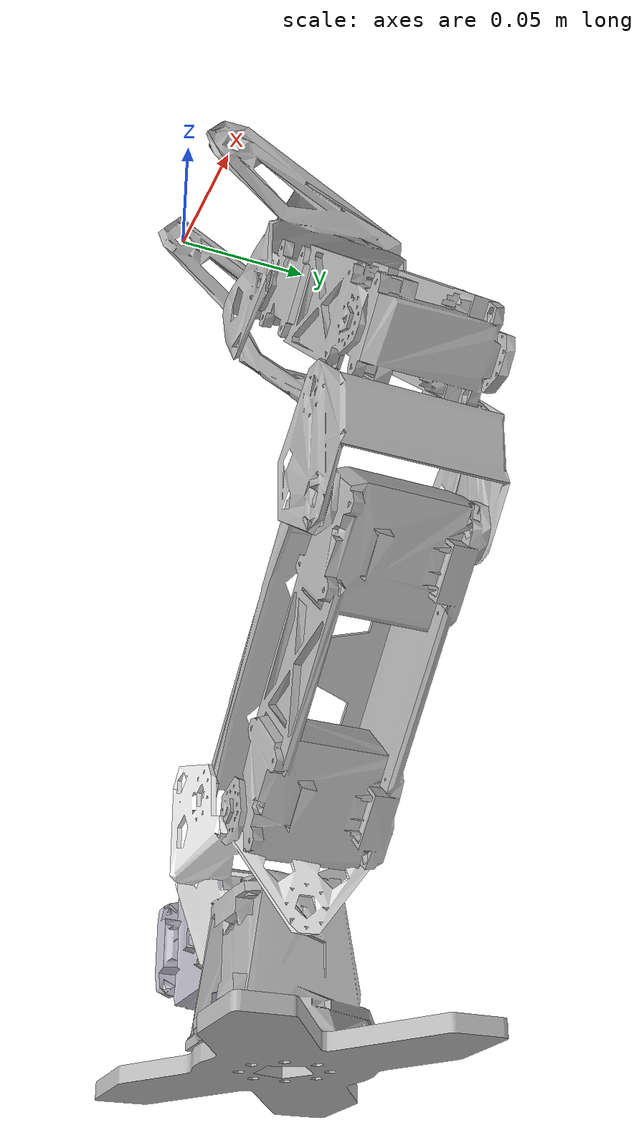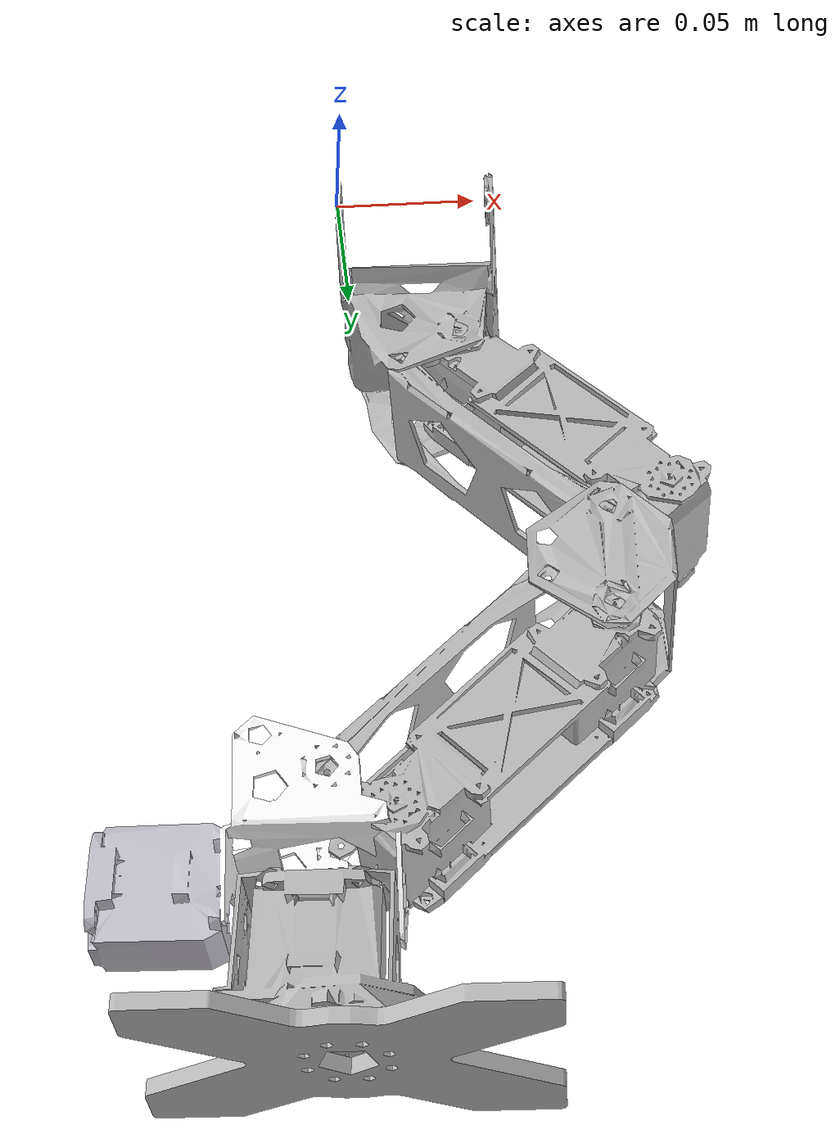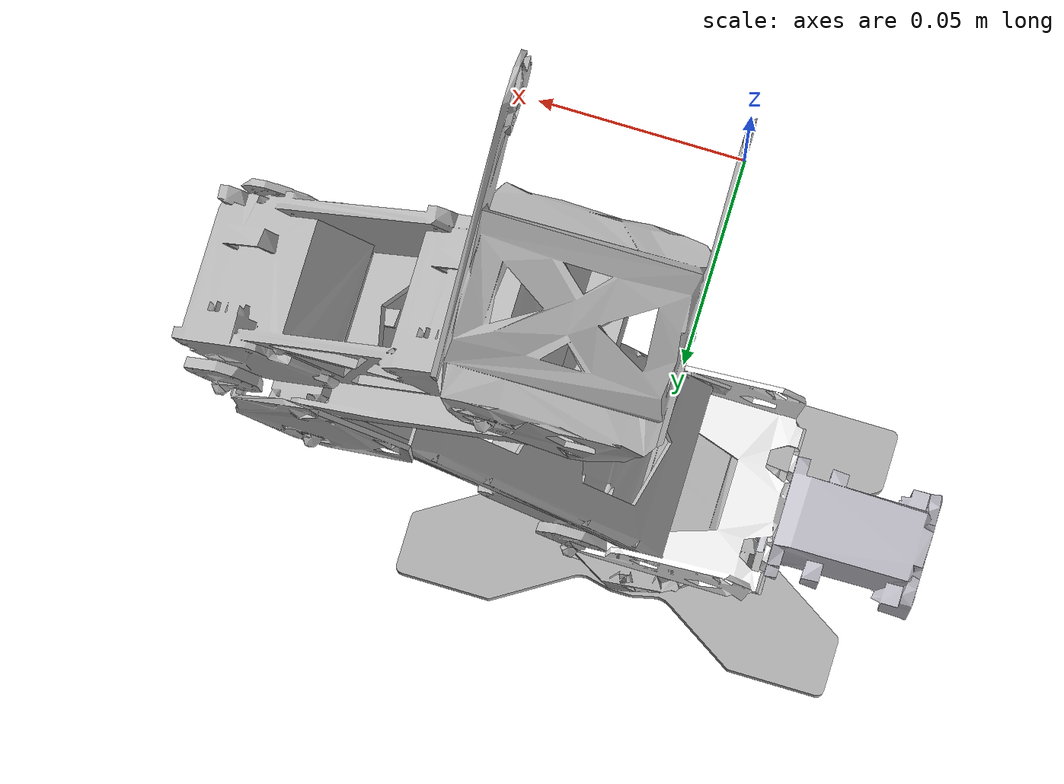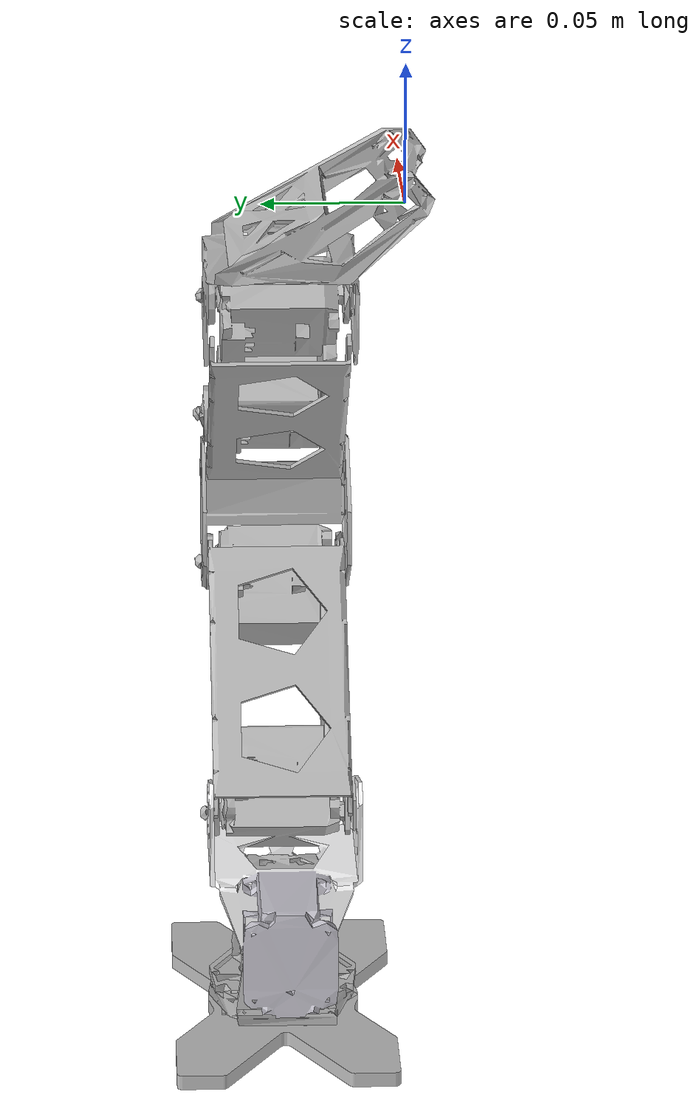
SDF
<sdf version='1.6'>
  <model name='ginko'>
    <link name='leg_l_link0'>
      <pose frame=''>0 0 0 0 -0 0</pose>
      <inertial>
        <pose frame=''>0.029308 0.037238 -0.026054 0 -0 0</pose>
        <mass>0.0343335</mass>
        <inertia>
          <ixx>2.443e-05</ixx>
          <ixy>-2.1e-07</ixy>
          <ixz>-2.1e-07</ixz>
          <iyy>2.287e-05</iyy>
          <iyz>-3.91e-06</iyz>
          <izz>2.983e-05</izz>
        </inertia>
      </inertial>
      <collision name='leg_l_link0_collision'>
        <pose frame=''>0 0 0 0 -0 0</pose>
        <geometry>
          <mesh>
            <scale>1 1 1</scale>
            <uri>model://ginko_description/models/ginko_auto/meshes/stl/link02_l_femoral.stl</uri>
          </mesh>
        </geometry>
      </collision>
      <visual name='leg_l_link0_visual'>
        <pose frame=''>0 0 0 0 -0 0</pose>
        <geometry>
          <mesh>
            <scale>1 1 1</scale>
            <uri>model://ginko_description/models/ginko_auto/meshes/stl/link02_l_femoral.stl</uri>
          </mesh>
        </geometry>
      </visual>
    </link>
    <link name='leg_l_link1'>
      <pose frame=''>0.0433 0.0175 -0.0481 0 0.7854 0</pose>
      <inertial>
        <pose frame=''>0.05 0.032851 0.000681 0 -0 0</pose>
        <mass>0.185257</mass>
        <inertia>
          <ixx>0.00041331</ixx>
          <ixy>-3.605e-05</ixy>
          <ixz>-0</ixz>
          <iyy>0.00027917</iyy>
          <iyz>-1.84e-06</iyz>
          <izz>0.0006651</izz>
        </inertia>
      </inertial>
      <collision name='leg_l_link1_collision'>
        <pose frame=''>0 0 0 0 -0 0</pose>
        <geometry>
          <mesh>
            <scale>1 1 1</scale>
            <uri>model://ginko_description/models/ginko_auto/meshes/stl/link03_l_leg01.stl</uri>
          </mesh>
        </geometry>
      </collision>
      <visual name='leg_l_link1_visual'>
        <pose frame=''>0 0 0 0 -0 0</pose>
        <geometry>
          <mesh>
            <scale>1 1 1</scale>
            <uri>model://ginko_description/models/ginko_auto/meshes/stl/link03_l_leg01.stl</uri>
          </mesh>
        </geometry>
      </visual>
    </link>
    <joint name='leg_l_joint1' type='revolute'>
      <child>leg_l_link1</child>
      <parent>leg_l_link0</parent>
      <axis>
        <xyz>0 -1 0</xyz>
        <limit>
          <lower>-1.3</lower>
          <upper>0.7854</upper>
          <effort>1000</effort>
          <velocity>0.5</velocity>
        </limit>
        <dynamics>
          <spring_reference>0</spring_reference>
          <spring_stiffness>0</spring_stiffness>
        </dynamics>
        <use_parent_model_frame>1</use_parent_model_frame>
      </axis>
    </joint>
    <link name='leg_l_link2'>
      <pose frame=''>0.022 0.0175 -0.06015 0 0.7854 0</pose>
      <inertial>
        <pose frame=''>0.05 0.024951 -0.004912 0 -0 0</pose>
        <mass>0.0164664</mass>
        <inertia>
          <ixx>6.4e-06</ixx>
          <ixy>0</ixy>
          <ixz>0</ixz>
          <iyy>1.642e-05</iyy>
          <iyz>0</iyz>
          <izz>2.264e-05</izz>
        </inertia>
      </inertial>
      <collision name='leg_l_link2_collision'>
        <pose frame=''>0 0 0 0 -0 0</pose>
        <geometry>
          <mesh>
            <scale>1 1 1</scale>
            <uri>model://ginko_description/models/ginko_auto/meshes/stl/link04_l_leg02.stl</uri>
          </mesh>
        </geometry>
      </collision>
      <visual name='leg_l_link2_visual'>
        <pose frame=''>0 0 0 0 -0 0</pose>
        <geometry>
          <mesh>
            <scale>1 1 1</scale>
            <uri>model://ginko_description/models/ginko_auto/meshes/stl/link04_l_leg02.stl</uri>
          </mesh>
        </geometry>
      </visual>
    </link>
    <joint name='leg_l_joint2' type='revolute'>
      <child>leg_l_link2</child>
      <parent>leg_l_link0</parent>
      <axis>
        <xyz>0 -1 0</xyz>
        <limit>
          <lower>-3.14159</lower>
          <upper>3.14159</upper>
          <effort>1000</effort>
          <velocity>0.5</velocity>
        </limit>
        <dynamics>
          <spring_reference>0</spring_reference>
          <spring_stiffness>0</spring_stiffness>
        </dynamics>
        <use_parent_model_frame>1</use_parent_model_frame>
      </axis>
    </joint>
    <link name='leg_l_link3'>
      <pose frame=''>0.092711 0.0175 -0.130861 0 -0 0</pose>
      <inertial>
        <pose frame=''>0.003934 0.023642 -0.0193 0 -0 0</pose>
        <mass>0.0178118</mass>
        <inertia>
          <ixx>1.301e-05</ixx>
          <ixy>8e-08</ixy>
          <ixz>0</ixz>
          <iyy>7e-06</iyy>
          <iyz>0</iyz>
          <izz>1.388e-05</izz>
        </inertia>
      </inertial>
      <collision name='leg_l_link3_collision'>
        <pose frame=''>0 0 0 0 -0 0</pose>
        <geometry>
          <mesh>
            <scale>1 1 1</scale>
            <uri>model://ginko_description/models/ginko_auto/meshes/stl/link05_l_knee.stl</uri>
          </mesh>
        </geometry>
      </collision>
      <visual name='leg_l_link3_visual'>
        <pose frame=''>0 0 0 0 -0 0</pose>
        <geometry>
          <mesh>
            <scale>1 1 1</scale>
            <uri>model://ginko_description/models/ginko_auto/meshes/stl/link05_l_knee.stl</uri>
          </mesh>
        </geometry>
      </visual>
    </link>
    <joint name='leg_l_joint3_sub' type='revolute'>
      <child>leg_l_link3</child>
      <parent>leg_l_link2</parent>
      <axis>
        <xyz>0 1 0</xyz>
        <limit>
          <lower>-3.14159</lower>
          <upper>3.14159</upper>
          <effort>1000</effort>
          <velocity>0.5</velocity>
        </limit>
        <dynamics>
          <spring_reference>0</spring_reference>
          <spring_stiffness>0</spring_stiffness>
        </dynamics>
        <use_parent_model_frame>1</use_parent_model_frame>
      </axis>
    </joint>
    <link name='leg_l_link4'>
      <pose frame=''>0.092711 0.0175 -0.169461 3.14159 0.785393 3.14159</pose>
      <inertial>
        <pose frame=''>0.05 0.032851 0.000681 0 -0 0</pose>
        <mass>0.185257</mass>
        <inertia>
          <ixx>0.00041331</ixx>
          <ixy>-3.605e-05</ixy>
          <ixz>-0</ixz>
          <iyy>0.00027917</iyy>
          <iyz>-1.84e-06</iyz>
          <izz>0.0006651</izz>
        </inertia>
      </inertial>
      <collision name='leg_l_link4_collision'>
        <pose frame=''>0 0 0 0 -0 0</pose>
        <geometry>
          <mesh>
            <scale>1 1 1</scale>
            <uri>model://ginko_description/models/ginko_auto/meshes/stl/link03_l_leg01.stl</uri>
          </mesh>
        </geometry>
      </collision>
      <visual name='leg_l_link4_visual'>
        <pose frame=''>0 0 0 0 -0 0</pose>
        <geometry>
          <mesh>
            <scale>1 1 1</scale>
            <uri>model://ginko_description/models/ginko_auto/meshes/stl/link03_l_leg01.stl</uri>
          </mesh>
        </geometry>
      </visual>
    </link>
    <joint name='leg_l_joint4' type='revolute'>
      <child>leg_l_link4</child>
      <parent>leg_l_link3</parent>
      <axis>
        <xyz>0 -1 0</xyz>
        <limit>
          <lower>-0.7854</lower>
          <upper>1.3</upper>
          <effort>1000</effort>
          <velocity>0.5</velocity>
        </limit>
        <dynamics>
          <spring_reference>0</spring_reference>
          <spring_stiffness>0</spring_stiffness>
        </dynamics>
        <use_parent_model_frame>1</use_parent_model_frame>
      </axis>
    </joint>
    <link name='leg_l_link5'>
      <pose frame=''>0.071411 0.0175 -0.157411 3.14159 0.785393 3.14159</pose>
      <inertial>
        <pose frame=''>0.05 0.024951 -0.004912 0 -0 0</pose>
        <mass>0.0164664</mass>
        <inertia>
          <ixx>6.4e-06</ixx>
          <ixy>0</ixy>
          <ixz>0</ixz>
          <iyy>1.642e-05</iyy>
          <iyz>0</iyz>
          <izz>2.264e-05</izz>
        </inertia>
      </inertial>
      <collision name='leg_l_link5_collision'>
        <pose frame=''>0 0 0 0 -0 0</pose>
        <geometry>
          <mesh>
            <scale>1 1 1</scale>
            <uri>model://ginko_description/models/ginko_auto/meshes/stl/link04_l_leg02.stl</uri>
          </mesh>
        </geometry>
      </collision>
      <visual name='leg_l_link5_visual'>
        <pose frame=''>0 0 0 0 -0 0</pose>
        <geometry>
          <mesh>
            <scale>1 1 1</scale>
            <uri>model://ginko_description/models/ginko_auto/meshes/stl/link04_l_leg02.stl</uri>
          </mesh>
        </geometry>
      </visual>
    </link>
    <joint name='leg_l_joint5' type='revolute'>
      <child>leg_l_link5</child>
      <parent>leg_l_link3</parent>
      <axis>
        <xyz>0 -1 0</xyz>
        <limit>
          <lower>-3.14159</lower>
          <upper>3.14159</upper>
          <effort>1000</effort>
          <velocity>0.5</velocity>
        </limit>
        <dynamics>
          <spring_reference>0</spring_reference>
          <spring_stiffness>0</spring_stiffness>
        </dynamics>
        <use_parent_model_frame>1</use_parent_model_frame>
      </axis>
    </joint>
    <link name='leg_l_link6'>
      <pose frame=''>0.000699 0.0175 -0.228121 0 -0 0</pose>
      <inertial>
        <pose frame=''>-0.041661 0.024639 -0.025863 0 -0 0</pose>
        <mass>0.087992</mass>
        <inertia>
          <ixx>2.815e-05</ixx>
          <ixy>-4.1e-07</ixy>
          <ixz>9.8e-06</ixz>
          <iyy>6.846e-05</iyy>
          <iyz>-2.6e-07</iyz>
          <izz>6.529e-05</izz>
        </inertia>
      </inertial>
      <collision name='leg_l_link6_collision'>
        <pose frame=''>0 0 0 0 -0 0</pose>
        <geometry>
          <mesh>
            <scale>1 1 1</scale>
            <uri>model://ginko_description/models/ginko_auto/meshes/stl/link06_l_toe01.stl</uri>
          </mesh>
        </geometry>
      </collision>
      <visual name='leg_l_link6_visual'>
        <pose frame=''>0 0 0 0 -0 0</pose>
        <geometry>
          <mesh>
            <scale>1 1 1</scale>
            <uri>model://ginko_description/models/ginko_auto/meshes/stl/link06_l_toe01.stl</uri>
          </mesh>
        </geometry>
      </visual>
    </link>
    <joint name='leg_l_joint6_sub' type='revolute'>
      <child>leg_l_link6</child>
      <parent>leg_l_link5</parent>
      <axis>
        <xyz>0 1 0</xyz>
        <limit>
          <lower>-3.14159</lower>
          <upper>3.14159</upper>
          <effort>1000</effort>
          <velocity>0.5</velocity>
        </limit>
        <dynamics>
          <spring_reference>0</spring_reference>
          <spring_stiffness>0</spring_stiffness>
        </dynamics>
        <use_parent_model_frame>1</use_parent_model_frame>
      </axis>
    </joint>
    <link name='leg_l_link7'>
      <pose frame=''>-0.027301 0.04225 -0.267221 0 -0 0</pose>
      <inertial>
        <pose frame=''>0.026588 1e-06 -0.017825 0 -0 0</pose>
        <mass>0.1092</mass>
        <inertia>
          <ixx>3.853e-05</ixx>
          <ixy>0</ixy>
          <ixz>-4.79e-06</ixz>
          <iyy>5.192e-05</iyy>
          <iyz>0</iyz>
          <izz>3.521e-05</izz>
        </inertia>
      </inertial>
      <collision name='leg_l_link7_collision'>
        <pose frame=''>0 0 0 0 -0 0</pose>
        <geometry>
          <mesh>
            <scale>1 1 1</scale>
            <uri>model://ginko_description/models/ginko_auto/meshes/stl/link07_l_toe02.stl</uri>
          </mesh>
        </geometry>
      </collision>
      <visual name='leg_l_link7_visual'>
        <pose frame=''>0 0 0 0 -0 0</pose>
        <geometry>
          <mesh>
            <scale>1 1 1</scale>
            <uri>model://ginko_description/models/ginko_auto/meshes/stl/link07_l_toe02.stl</uri>
          </mesh>
        </geometry>
      </visual>
    </link>
    <joint name='leg_l_joint7' type='revolute'>
      <child>leg_l_link7</child>
      <parent>leg_l_link6</parent>
      <axis>
        <xyz>-1 0 0</xyz>
        <limit>
          <lower>-1.6</lower>
          <upper>1.6</upper>
          <effort>1000</effort>
          <velocity>0.5</velocity>
        </limit>
        <dynamics>
          <spring_reference>0</spring_reference>
          <spring_stiffness>0</spring_stiffness>
        </dynamics>
        <use_parent_model_frame>1</use_parent_model_frame>
      </axis>
    </joint>
    <link name='leg_l_link8'>
      <pose frame=''>0.006899 0.04225 -0.307221 0 -0 0</pose>
      <inertial>
        <pose frame=''>0 0 -0.002693 0 -0 0</pose>
        <mass>0.0536311</mass>
        <inertia>
          <ixx>2.877e-05</ixx>
          <ixy>0</ixy>
          <ixz>0</ixz>
          <iyy>7.083e-05</iyy>
          <iyz>-0</iyz>
          <izz>9.934e-05</izz>
        </inertia>
      </inertial>
      <collision name='leg_l_link8_collision'>
        <pose frame=''>0 0 0 0 -0 0</pose>
        <geometry>
          <mesh>
            <scale>1 1 1</scale>
            <uri>model://ginko_description/models/ginko_auto/meshes/stl/link08_l_toe03.stl</uri>
          </mesh>
        </geometry>
      </collision>
      <visual name='leg_l_link8_visual'>
        <pose frame=''>0 0 0 0 -0 0</pose>
        <geometry>
          <mesh>
            <scale>1 1 1</scale>
            <uri>model://ginko_description/models/ginko_auto/meshes/stl/link08_l_toe03.stl</uri>
          </mesh>
        </geometry>
      </visual>
    </link>
    <joint name='leg_l_joint8' type='revolute'>
      <child>leg_l_link8</child>
      <parent>leg_l_link7</parent>
      <axis>
        <xyz>0 0 1</xyz>
        <limit>
          <lower>-2.6</lower>
          <upper>2.6</upper>
          <effort>1000</effort>
          <velocity>0.5</velocity>
        </limit>
        <dynamics>
          <spring_reference>0</spring_reference>
          <spring_stiffness>0</spring_stiffness>
        </dynamics>
        <use_parent_model_frame>1</use_parent_model_frame>
      </axis>
    </joint>
  </model>
</sdf>
